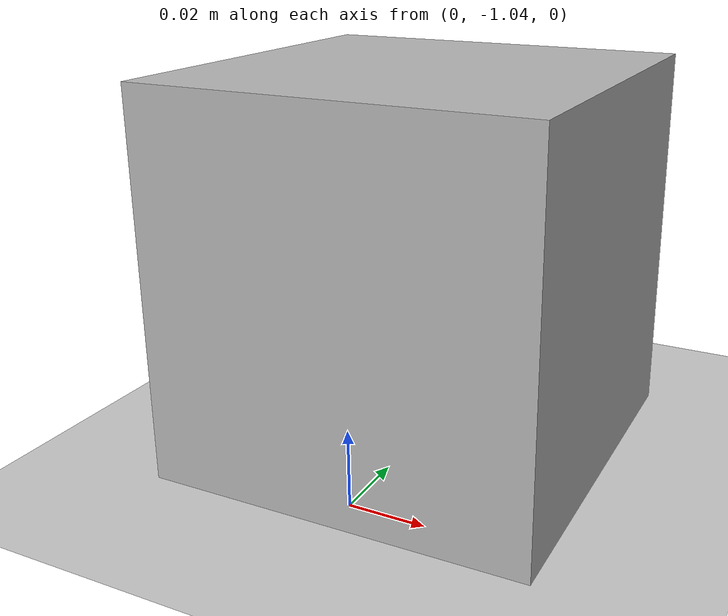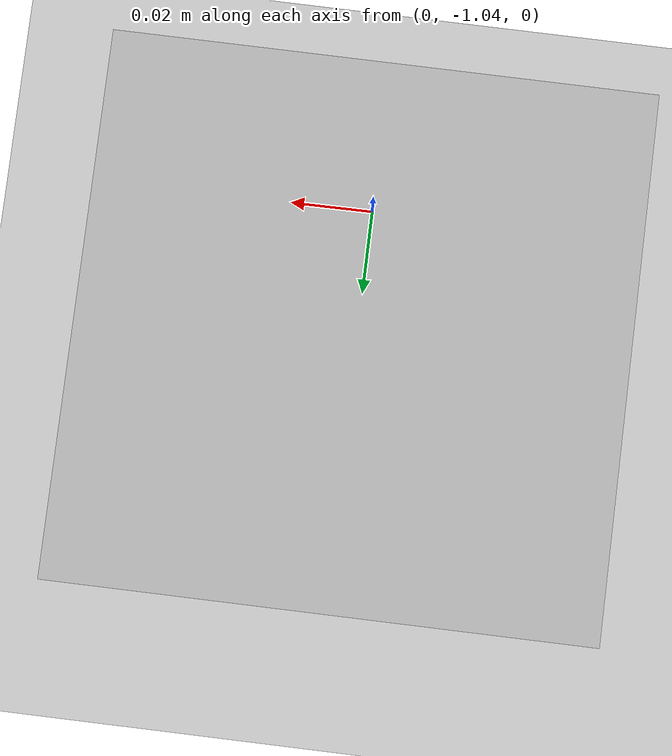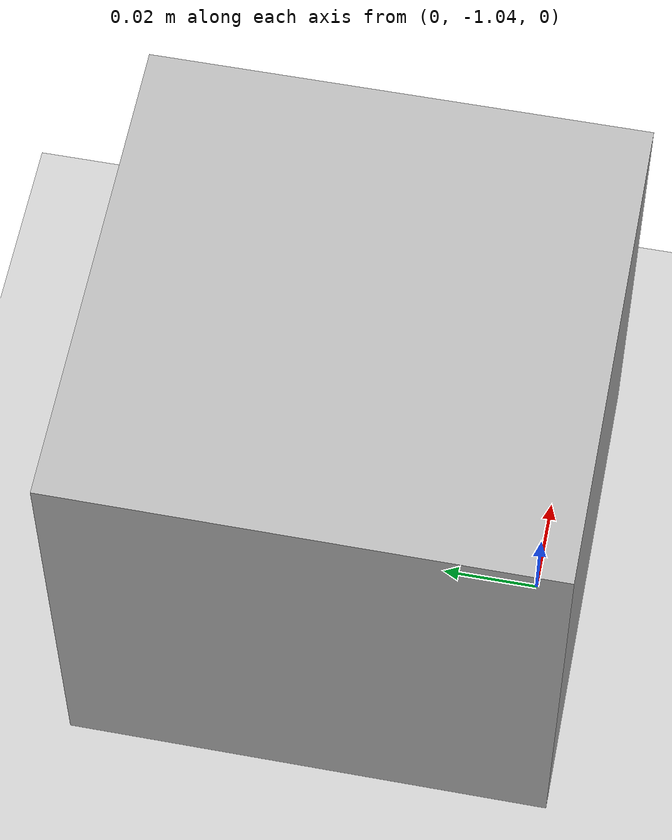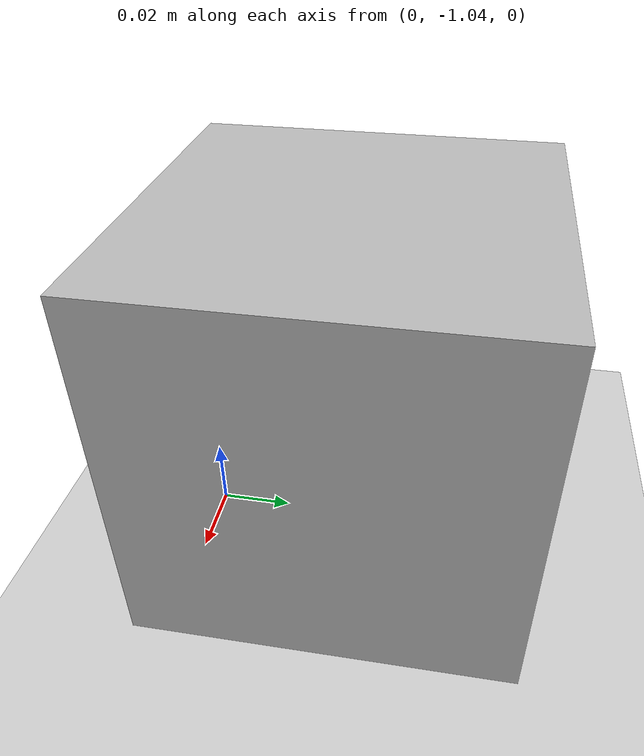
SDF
<?xml version='1.0'?>
<sdf version='1.4'>
    <world name="default">
    <include>
        <uri>model://ground_plane</uri>
    </include>

    <include>
        <uri>model://sun</uri>
    </include>

    <!-- reference to your plugin -->
    <model name='camera'>
        <pose>0 -1 0.05 0 0 0</pose>
        <link name='link'>
            <inertial>
                <mass>0.1</mass>
                <inertia>
                  <ixx>1</ixx>
                  <ixy>0</ixy>
                  <ixz>0</ixz>
                  <iyy>1</iyy>
                  <iyz>0</iyz>
                  <izz>1</izz>
                </inertia>
            </inertial>
            <collision name='collision'>
                <geometry>
                    <box>
                        <size>0.1 0.1 0.1</size>
                    </box>
                </geometry>
                <max_contacts>10</max_contacts>
                <surface>
                    <contact>
                        <ode>
                            <soft_cfm>0.0000</soft_cfm>
                            <soft_erp>0.2000</soft_erp>
                            <kp>1000000000000.0000000</kp>
                            <kd>1.000000</kd>
                            <max_vel>100.000000</max_vel>
                            <min_depth>0.001000</min_depth>
                        </ode>
                    </contact>
                    <bounce>
                        <restitution_coefficient>0.000000</restitution_coefficient>
                        <threshold>100000.000000</threshold>
                    </bounce>
                    <friction>
                        <ode>
                            <mu>50.000000</mu>
                            <mu2>50.000000</mu2>
                            <fdir1>0.000000 0.000000 0.000000</fdir1>
                            <slip1>0.000000</slip1>
                            <slip2>0.000000</slip2>
                        </ode>
                    </friction>
                </surface>
            </collision>
            <visual name='visual'>
                <geometry>
                    <box>
                        <size>0.1 0.1 0.1</size>
                    </box>
                </geometry>
            </visual>
            <sensor name='camera' type='camera'>
                <camera name='__default__'>
                    <horizontal_fov>1.047</horizontal_fov>
                    <image>
                        <width>320</width>
                        <height>240</height>
                    </image>
                    <clip>
                        <near>0.1</near>
                        <far>100</far>
                    </clip>
                </camera>
            <plugin name="gazebo_light_sensor_plugin"
                    filename="libgazebo_light_sensor_plugin.so">
                    <cameraName>camera</cameraName>
                    <alwaysOn>true</alwaysOn>
                    <updateRate>10</updateRate>
                    <imageTopicName>rgb/image_raw</imageTopicName>
                    <cameraInfoTopicName>rgb/camera_info</cameraInfoTopicName>
                    <depthImageTopicName>depth/image_raw</depthImageTopicName>
                    <pointCloudTopicName>depth/points</pointCloudTopicName>
                    <frameName>camera_depth_optical_frame</frameName>
                    <baseline>0.1</baseline>
                    <distortion_k1>0.0</distortion_k1>
                    <distortion_k2>0.0</distortion_k2>
                    <distortion_k3>0.0</distortion_k3>
                    <distortion_t1>0.0</distortion_t1>
                    <distortion_t2>0.0</distortion_t2>
                    <pointCloudCutoff>0.4</pointCloudCutoff>
                    <robotNamespace>/</robotNamespace>
                </plugin>
            </sensor>
            <self_collide>0</self_collide>
            <kinematic>0</kinematic>
            <gravity>1</gravity>
        </link>
    </model>
</world>
</sdf>
